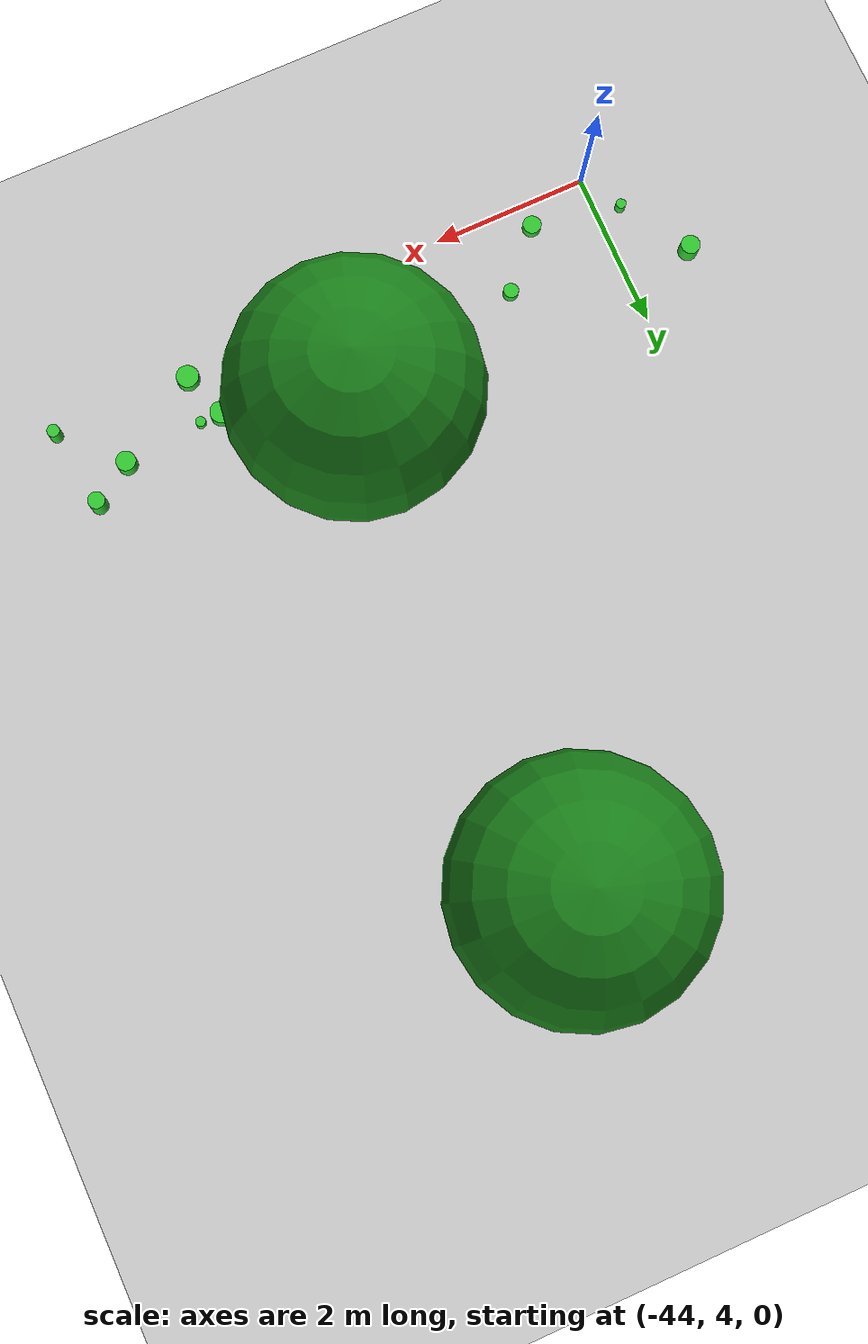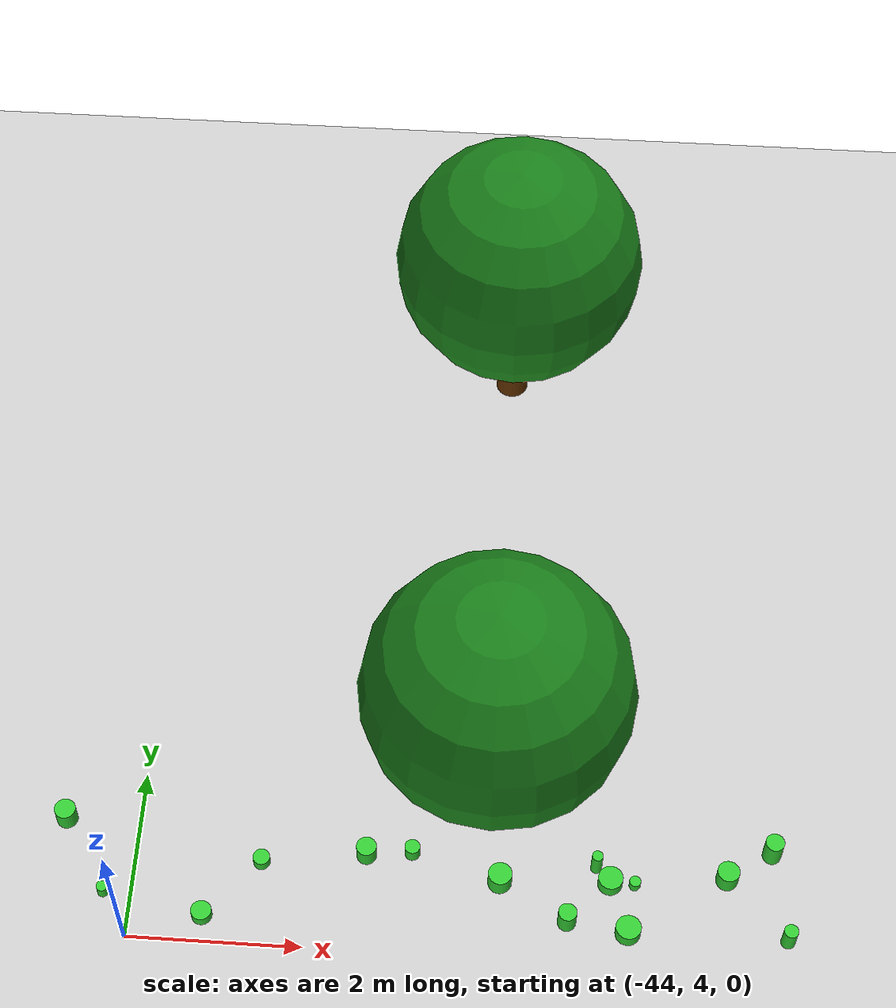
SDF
<sdf version="1.6">
 <world name="street_park_world">
  <include><uri>model://sun</uri></include>
  <include><uri>model://ground_plane</uri></include>
  <model name="tree_0">
   <pose>-40 6 0 0 0 0</pose>
   <static>true</static>
   <link name="trunk">
    <pose>0 0 1 0 0 0</pose>
    <collision name="collision">
     <geometry><cylinder><radius>0.2</radius><length>2</length></cylinder></geometry>
    </collision>
    <visual name="visual">
     <geometry><cylinder><radius>0.2</radius><length>2</length></cylinder></geometry>
     <material><ambient>0.4 0.2 0.0 1</ambient></material>
    </visual>
   </link>
   <link name="leaves">
    <pose>0 0 2.5 0 0 0</pose>
    <collision name="collision"><geometry><sphere><radius>1.5</radius></sphere></geometry></collision>
    <visual name="visual">
     <geometry><sphere><radius>1.5</radius></sphere></geometry>
     <material><ambient>0.1 0.5 0.1 1</ambient></material>
    </visual>
   </link>
  </model>
  <model name="tree_2">
   <pose>-40 12 0 0 0 0</pose>
   <static>true</static>
   <link name="trunk">
    <pose>0 0 1 0 0 0</pose>
    <collision name="collision">
     <geometry><cylinder><radius>0.2</radius><length>2</length></cylinder></geometry>
    </collision>
    <visual name="visual">
     <geometry><cylinder><radius>0.2</radius><length>2</length></cylinder></geometry>
     <material><ambient>0.4 0.2 0.0 1</ambient></material>
    </visual>
   </link>
   <link name="leaves">
    <pose>0 0 2.5 0 0 0</pose>
    <collision name="collision"><geometry><sphere><radius>1.5</radius></sphere></geometry></collision>
    <visual name="visual">
     <geometry><sphere><radius>1.5</radius></sphere></geometry>
     <material><ambient>0.1 0.5 0.1 1</ambient></material>
    </visual>
   </link>
  </model>
  <model name="weed_34">
   <pose>-38.77087333784547 5.164843031360125 0.16487516439604818 0 0 0</pose>
   <static>true</static>
   <link name="link">
    <collision name="collision">
     <geometry>
      <cylinder><radius>0.06283914644997628</radius><length>0.32975032879209637</length></cylinder>
     </geometry>
    </collision>
    <visual name="visual">
     <geometry>
      <cylinder><radius>0.06283914644997628</radius><length>0.32975032879209637</length></cylinder>
     </geometry>
     <material><ambient>0.2 0.8 0.2 1</ambient></material>
    </visual>
   </link>
  </model>
  <model name="weed_40">
   <pose>-38.610622259187075 4.983544140178139 0.08434126757167316 0 0 0</pose>
   <static>true</static>
   <link name="link">
    <collision name="collision">
     <geometry>
      <cylinder><radius>0.14054200130061278</radius><length>0.16868253514334633</length></cylinder>
     </geometry>
    </collision>
    <visual name="visual">
     <geometry>
      <cylinder><radius>0.14054200130061278</radius><length>0.16868253514334633</length></cylinder>
     </geometry>
     <material><ambient>0.2 0.8 0.2 1</ambient></material>
    </visual>
   </link>
  </model>
  <model name="weed_56">
   <pose>-39.855125438326525 4.91784863224256 0.12542755743792705 0 0 0</pose>
   <static>true</static>
   <link name="link">
    <collision name="collision">
     <geometry>
      <cylinder><radius>0.13527198920482852</radius><length>0.2508551148758541</length></cylinder>
     </geometry>
    </collision>
    <visual name="visual">
     <geometry>
      <cylinder><radius>0.13527198920482852</radius><length>0.2508551148758541</length></cylinder>
     </geometry>
     <material><ambient>0.2 0.8 0.2 1</ambient></material>
    </visual>
   </link>
  </model>
  <model name="weed_64">
   <pose>-38.40653510103303 4.398416037173856 0.08978006221256021 0 0 0</pose>
   <static>true</static>
   <link name="link">
    <collision name="collision">
     <geometry>
      <cylinder><radius>0.14332593779937092</radius><length>0.17956012442512043</length></cylinder>
     </geometry>
    </collision>
    <visual name="visual">
     <geometry>
      <cylinder><radius>0.14332593779937092</radius><length>0.17956012442512043</length></cylinder>
     </geometry>
     <material><ambient>0.2 0.8 0.2 1</ambient></material>
    </visual>
   </link>
  </model>
  <model name="weed_92">
   <pose>-44.847784960323345 5.3958052316987155 0.13076779956391882 0 0 0</pose>
   <static>true</static>
   <link name="link">
    <collision name="collision">
     <geometry>
      <cylinder><radius>0.12194299991448455</radius><length>0.26153559912783764</length></cylinder>
     </geometry>
    </collision>
    <visual name="visual">
     <geometry>
      <cylinder><radius>0.12194299991448455</radius><length>0.26153559912783764</length></cylinder>
     </geometry>
     <material><ambient>0.2 0.8 0.2 1</ambient></material>
    </visual>
   </link>
  </model>
  <model name="weed_126">
   <pose>-42.56081582937188 4.99984950721307 0.07035492308458464 0 0 0</pose>
   <static>true</static>
   <link name="link">
    <collision name="collision">
     <geometry>
      <cylinder><radius>0.09616984440515117</radius><length>0.1407098461691693</length></cylinder>
     </geometry>
    </collision>
    <visual name="visual">
     <geometry>
      <cylinder><radius>0.09616984440515117</radius><length>0.1407098461691693</length></cylinder>
     </geometry>
     <material><ambient>0.2 0.8 0.2 1</ambient></material>
    </visual>
   </link>
  </model>
  <model name="weed_132">
   <pose>-43.16579844117009 4.313335284098706 0.06893314623113095 0 0 0</pose>
   <static>true</static>
   <link name="link">
    <collision name="collision">
     <geometry>
      <cylinder><radius>0.11694588446199107</radius><length>0.1378662924622619</length></cylinder>
     </geometry>
    </collision>
    <visual name="visual">
     <geometry>
      <cylinder><radius>0.11694588446199107</radius><length>0.1378662924622619</length></cylinder>
     </geometry>
     <material><ambient>0.2 0.8 0.2 1</ambient></material>
    </visual>
   </link>
  </model>
  <model name="weed_150">
   <pose>-37.29483342377809 5.108104529745872 0.12328667702731812 0 0 0</pose>
   <static>true</static>
   <link name="link">
    <collision name="collision">
     <geometry>
      <cylinder><radius>0.12581646534824664</radius><length>0.24657335405463623</length></cylinder>
     </geometry>
    </collision>
    <visual name="visual">
     <geometry>
      <cylinder><radius>0.12581646534824664</radius><length>0.24657335405463623</length></cylinder>
     </geometry>
     <material><ambient>0.2 0.8 0.2 1</ambient></material>
    </visual>
   </link>
  </model>
  <model name="weed_152">
   <pose>-36.62519845007955 4.410234960661542 0.1537680732942803 0 0 0</pose>
   <static>true</static>
   <link name="link">
    <collision name="collision">
     <geometry>
      <cylinder><radius>0.08062060301300884</radius><length>0.3075361465885606</length></cylinder>
     </geometry>
    </collision>
    <visual name="visual">
     <geometry>
      <cylinder><radius>0.08062060301300884</radius><length>0.3075361465885606</length></cylinder>
     </geometry>
     <material><ambient>0.2 0.8 0.2 1</ambient></material>
    </visual>
   </link>
  </model>
  <model name="weed_164">
   <pose>-38.33260467699242 4.981223989732797 0.05804136114387998 0 0 0</pose>
   <static>true</static>
   <link name="link">
    <collision name="collision">
     <geometry>
      <cylinder><radius>0.06491975844736551</radius><length>0.11608272228775995</length></cylinder>
     </geometry>
    </collision>
    <visual name="visual">
     <geometry>
      <cylinder><radius>0.06491975844736551</radius><length>0.11608272228775995</length></cylinder>
     </geometry>
     <material><ambient>0.2 0.8 0.2 1</ambient></material>
    </visual>
   </link>
  </model>
  <model name="weed_180">
   <pose>-36.78058020321133 5.446675543069971 0.1753937920859272 0 0 0</pose>
   <static>true</static>
   <link name="link">
    <collision name="collision">
     <geometry>
      <cylinder><radius>0.10751991092199303</radius><length>0.3507875841718544</length></cylinder>
     </geometry>
    </collision>
    <visual name="visual">
     <geometry>
      <cylinder><radius>0.10751991092199303</radius><length>0.3507875841718544</length></cylinder>
     </geometry>
     <material><ambient>0.2 0.8 0.2 1</ambient></material>
    </visual>
   </link>
  </model>
  <model name="weed_182">
   <pose>-41.379149416984546 5.15877636257758 0.12057512348774505 0 0 0</pose>
   <static>true</static>
   <link name="link">
    <collision name="collision">
     <geometry>
      <cylinder><radius>0.11515094894336864</radius><length>0.2411502469754901</length></cylinder>
     </geometry>
    </collision>
    <visual name="visual">
     <geometry>
      <cylinder><radius>0.11515094894336864</radius><length>0.2411502469754901</length></cylinder>
     </geometry>
     <material><ambient>0.2 0.8 0.2 1</ambient></material>
    </visual>
   </link>
  </model>
  <model name="weed_216">
   <pose>-40.86081281905085 5.214600851227097 0.09400516639478132 0 0 0</pose>
   <static>true</static>
   <link name="link">
    <collision name="collision">
     <geometry>
      <cylinder><radius>0.08748410897753148</radius><length>0.18801033278956264</length></cylinder>
     </geometry>
    </collision>
    <visual name="visual">
     <geometry>
      <cylinder><radius>0.08748410897753148</radius><length>0.18801033278956264</length></cylinder>
     </geometry>
     <material><ambient>0.2 0.8 0.2 1</ambient></material>
    </visual>
   </link>
  </model>
  <model name="weed_266">
   <pose>-39.08859900118975 4.485022399381134 0.14496150864515234 0 0 0</pose>
   <static>true</static>
   <link name="link">
    <collision name="collision">
     <geometry>
      <cylinder><radius>0.10483564340483606</radius><length>0.2899230172903047</length></cylinder>
     </geometry>
    </collision>
    <visual name="visual">
     <geometry>
      <cylinder><radius>0.10483564340483606</radius><length>0.2899230172903047</length></cylinder>
     </geometry>
     <material><ambient>0.2 0.8 0.2 1</ambient></material>
    </visual>
   </link>
  </model>
  <model name="weed_292">
   <pose>-44.308162269010545 4.5219871068258115 0.08168509688304684 0 0 0</pose>
   <static>true</static>
   <link name="link">
    <collision name="collision">
     <geometry>
      <cylinder><radius>0.0637234805257327</radius><length>0.16337019376609369</length></cylinder>
     </geometry>
    </collision>
    <visual name="visual">
     <geometry>
      <cylinder><radius>0.0637234805257327</radius><length>0.16337019376609369</length></cylinder>
     </geometry>
     <material><ambient>0.2 0.8 0.2 1</ambient></material>
    </visual>
   </link>
  </model>
 </world>
</sdf>
